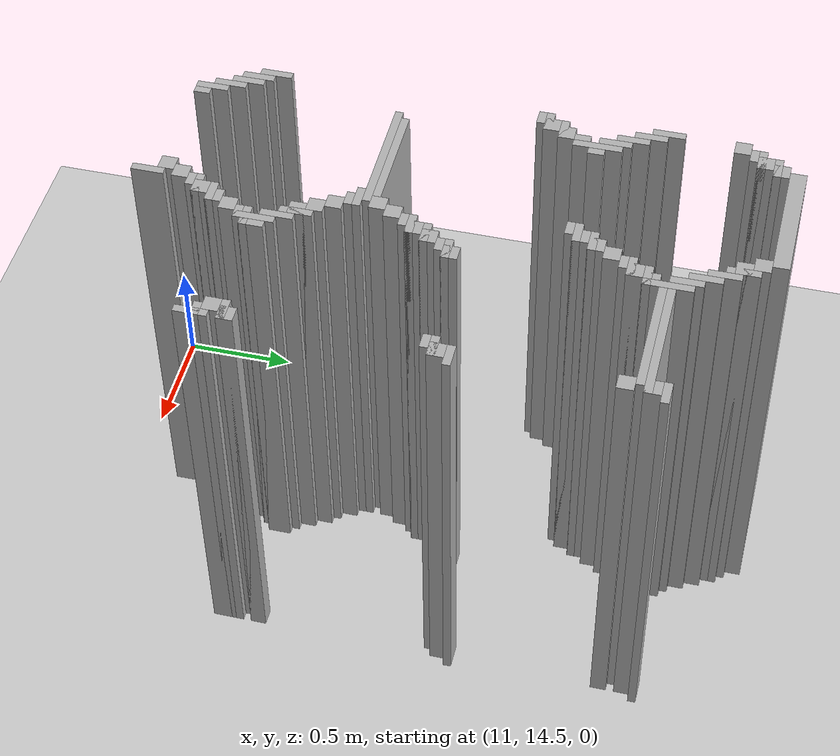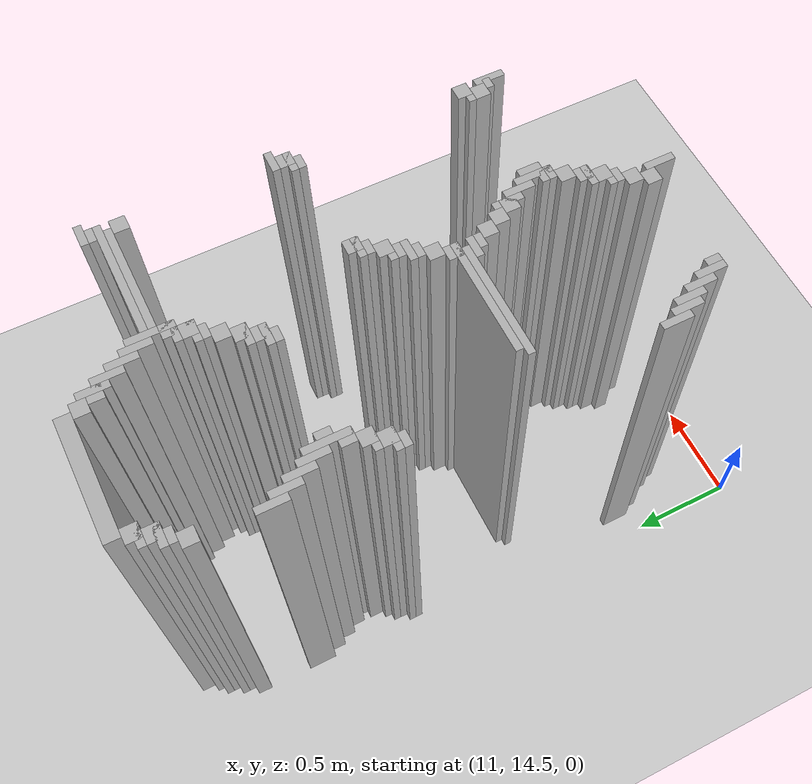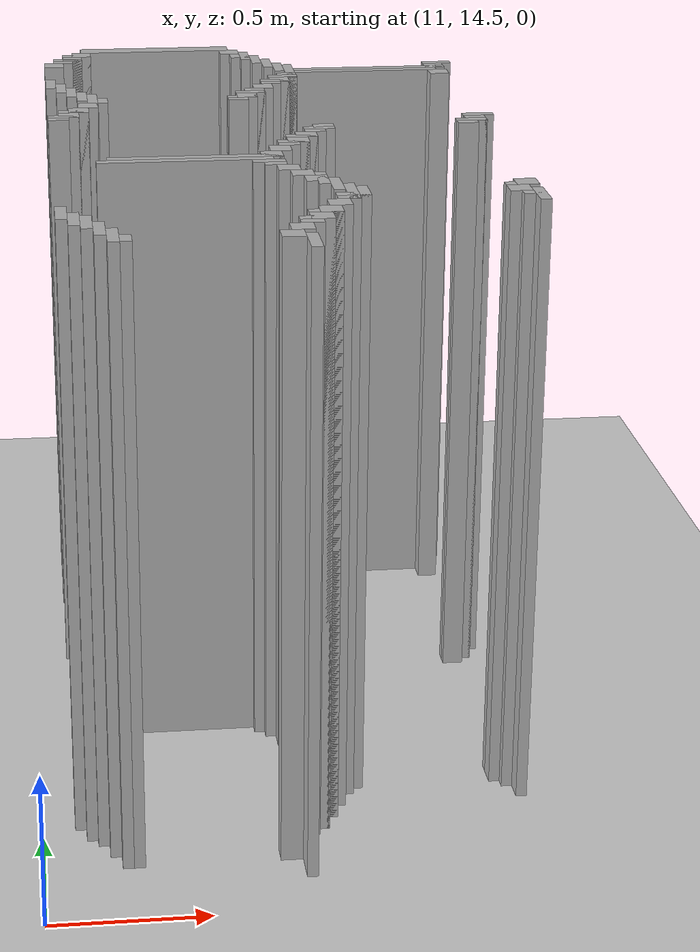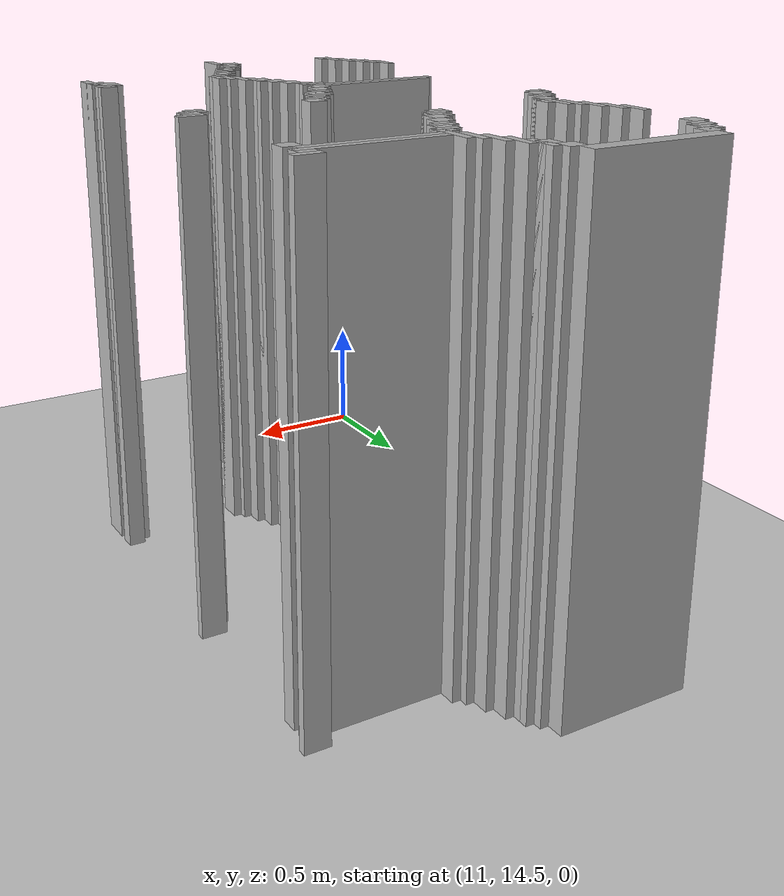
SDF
<sdf version="1.6">
 <world name="slam_world">
  <model name="ground_plane">
   <static>true</static>
   <link name="link">
    <collision name="collision">
     <geometry><plane><normal>0 0 1</normal><size>100 100</size></plane></geometry>
    </collision>
    <visual name="visual">
     <geometry><plane><normal>0 0 1</normal><size>100 100</size></plane></geometry>
     <material>
      <ambient>0.8 0.8 0.8 1</ambient>
      <diffuse>0.8 0.8 0.8 1</diffuse>
      <specular>0.8 0.8 0.8 1</specular>
     </material>
    </visual>
   </link>
  </model>
  <model name="wall_8">
   <static>true</static>
   <pose>11.519721577726218 17.366589327146173 1.0 0 0 0</pose>
   <link name="link">
    <collision name="collision">
     <geometry><box><size>0.5568445475638051 0.06960556844547564 2.0</size></box></geometry>
    </collision>
    <visual name="visual">
     <geometry><box><size>0.5568445475638051 0.06960556844547564 2.0</size></box></geometry>
     <material><ambient>0.5 0.5 0.5 1</ambient><diffuse>0.7 0.7 0.7 1</diffuse></material>
    </visual>
   </link>
  </model>
  <model name="wall_25">
   <static>true</static>
   <pose>11.241299303944315 17.296983758700694 1.0 0 0 0</pose>
   <link name="link">
    <collision name="collision">
     <geometry><box><size>0.06960556844547564 0.06960556844547564 2.0</size></box></geometry>
    </collision>
    <visual name="visual">
     <geometry><box><size>0.06960556844547564 0.06960556844547564 2.0</size></box></geometry>
     <material><ambient>0.5 0.5 0.5 1</ambient><diffuse>0.7 0.7 0.7 1</diffuse></material>
    </visual>
   </link>
  </model>
  <model name="wall_26">
   <static>true</static>
   <pose>11.79814385150812 17.296983758700694 1.0 0 0 0</pose>
   <link name="link">
    <collision name="collision">
     <geometry><box><size>0.06960556844547564 0.06960556844547564 2.0</size></box></geometry>
    </collision>
    <visual name="visual">
     <geometry><box><size>0.06960556844547564 0.06960556844547564 2.0</size></box></geometry>
     <material><ambient>0.5 0.5 0.5 1</ambient><diffuse>0.7 0.7 0.7 1</diffuse></material>
    </visual>
   </link>
  </model>
  <model name="wall_45">
   <static>true</static>
   <pose>11.223897911832946 17.279582366589327 1.0 0 0 0</pose>
   <link name="link">
    <collision name="collision">
     <geometry><box><size>0.10440835266821345 0.03480278422273782 2.0</size></box></geometry>
    </collision>
    <visual name="visual">
     <geometry><box><size>0.10440835266821345 0.03480278422273782 2.0</size></box></geometry>
     <material><ambient>0.5 0.5 0.5 1</ambient><diffuse>0.7 0.7 0.7 1</diffuse></material>
    </visual>
   </link>
  </model>
  <model name="wall_46">
   <static>true</static>
   <pose>11.850348027842227 17.22737819025522 1.0 0 0 0</pose>
   <link name="link">
    <collision name="collision">
     <geometry><box><size>0.03480278422273782 0.13921113689095127 2.0</size></box></geometry>
    </collision>
    <visual name="visual">
     <geometry><box><size>0.03480278422273782 0.13921113689095127 2.0</size></box></geometry>
     <material><ambient>0.5 0.5 0.5 1</ambient><diffuse>0.7 0.7 0.7 1</diffuse></material>
    </visual>
   </link>
  </model>
  <model name="wall_65">
   <static>true</static>
   <pose>11.206496519721577 17.22737819025522 1.0 0 0 0</pose>
   <link name="link">
    <collision name="collision">
     <geometry><box><size>0.06960556844547564 0.06960556844547564 2.0</size></box></geometry>
    </collision>
    <visual name="visual">
     <geometry><box><size>0.06960556844547564 0.06960556844547564 2.0</size></box></geometry>
     <material><ambient>0.5 0.5 0.5 1</ambient><diffuse>0.7 0.7 0.7 1</diffuse></material>
    </visual>
   </link>
  </model>
  <model name="wall_66">
   <static>true</static>
   <pose>11.832946635730858 17.22737819025522 1.0 0 0 0</pose>
   <link name="link">
    <collision name="collision">
     <geometry><box><size>0.06960556844547564 0.06960556844547564 2.0</size></box></geometry>
    </collision>
    <visual name="visual">
     <geometry><box><size>0.06960556844547564 0.06960556844547564 2.0</size></box></geometry>
     <material><ambient>0.5 0.5 0.5 1</ambient><diffuse>0.7 0.7 0.7 1</diffuse></material>
    </visual>
   </link>
  </model>
  <model name="wall_85">
   <static>true</static>
   <pose>11.189095127610209 17.209976798143853 1.0 0 0 0</pose>
   <link name="link">
    <collision name="collision">
     <geometry><box><size>0.10440835266821345 0.03480278422273782 2.0</size></box></geometry>
    </collision>
    <visual name="visual">
     <geometry><box><size>0.10440835266821345 0.03480278422273782 2.0</size></box></geometry>
     <material><ambient>0.5 0.5 0.5 1</ambient><diffuse>0.7 0.7 0.7 1</diffuse></material>
    </visual>
   </link>
  </model>
  <model name="wall_86">
   <static>true</static>
   <pose>11.885150812064964 17.157772621809745 1.0 0 0 0</pose>
   <link name="link">
    <collision name="collision">
     <geometry><box><size>0.03480278422273782 0.13921113689095127 2.0</size></box></geometry>
    </collision>
    <visual name="visual">
     <geometry><box><size>0.03480278422273782 0.13921113689095127 2.0</size></box></geometry>
     <material><ambient>0.5 0.5 0.5 1</ambient><diffuse>0.7 0.7 0.7 1</diffuse></material>
    </visual>
   </link>
  </model>
  <model name="wall_98">
   <static>true</static>
   <pose>11.17169373549884 17.17517401392111 1.0 0 0 0</pose>
   <link name="link">
    <collision name="collision">
     <geometry><box><size>0.06960556844547564 0.03480278422273782 2.0</size></box></geometry>
    </collision>
    <visual name="visual">
     <geometry><box><size>0.06960556844547564 0.03480278422273782 2.0</size></box></geometry>
     <material><ambient>0.5 0.5 0.5 1</ambient><diffuse>0.7 0.7 0.7 1</diffuse></material>
    </visual>
   </link>
  </model>
  <model name="wall_115">
   <static>true</static>
   <pose>11.1368909512761 17.122969837587007 1.0 0 0 0</pose>
   <link name="link">
    <collision name="collision">
     <geometry><box><size>0.06960556844547564 0.06960556844547564 2.0</size></box></geometry>
    </collision>
    <visual name="visual">
     <geometry><box><size>0.06960556844547564 0.06960556844547564 2.0</size></box></geometry>
     <material><ambient>0.5 0.5 0.5 1</ambient><diffuse>0.7 0.7 0.7 1</diffuse></material>
    </visual>
   </link>
  </model>
  <model name="wall_116">
   <static>true</static>
   <pose>11.919953596287703 17.08816705336427 1.0 0 0 0</pose>
   <link name="link">
    <collision name="collision">
     <geometry><box><size>0.03480278422273782 0.13921113689095127 2.0</size></box></geometry>
    </collision>
    <visual name="visual">
     <geometry><box><size>0.03480278422273782 0.13921113689095127 2.0</size></box></geometry>
     <material><ambient>0.5 0.5 0.5 1</ambient><diffuse>0.7 0.7 0.7 1</diffuse></material>
    </visual>
   </link>
  </model>
  <model name="wall_136">
   <static>true</static>
   <pose>11.95475638051044 17.01856148491879 1.0 0 0 0</pose>
   <link name="link">
    <collision name="collision">
     <geometry><box><size>0.03480278422273782 0.13921113689095127 2.0</size></box></geometry>
    </collision>
    <visual name="visual">
     <geometry><box><size>0.03480278422273782 0.13921113689095127 2.0</size></box></geometry>
     <material><ambient>0.5 0.5 0.5 1</ambient><diffuse>0.7 0.7 0.7 1</diffuse></material>
    </visual>
   </link>
  </model>
  <model name="wall_156">
   <static>true</static>
   <pose>11.989559164733178 16.948955916473317 1.0 0 0 0</pose>
   <link name="link">
    <collision name="collision">
     <geometry><box><size>0.03480278422273782 0.2088167053364269 2.0</size></box></geometry>
    </collision>
    <visual name="visual">
     <geometry><box><size>0.03480278422273782 0.2088167053364269 2.0</size></box></geometry>
     <material><ambient>0.5 0.5 0.5 1</ambient><diffuse>0.7 0.7 0.7 1</diffuse></material>
    </visual>
   </link>
  </model>
  <model name="wall_157">
   <static>true</static>
   <pose>12.546403712296984 17.035962877030162 1.0 0 0 0</pose>
   <link name="link">
    <collision name="collision">
     <geometry><box><size>0.10440835266821345 0.03480278422273782 2.0</size></box></geometry>
    </collision>
    <visual name="visual">
     <geometry><box><size>0.10440835266821345 0.03480278422273782 2.0</size></box></geometry>
     <material><ambient>0.5 0.5 0.5 1</ambient><diffuse>0.7 0.7 0.7 1</diffuse></material>
    </visual>
   </link>
  </model>
  <model name="wall_169">
   <static>true</static>
   <pose>12.529002320185615 16.983758700696054 1.0 0 0 0</pose>
   <link name="link">
    <collision name="collision">
     <geometry><box><size>0.06960556844547564 0.06960556844547564 2.0</size></box></geometry>
    </collision>
    <visual name="visual">
     <geometry><box><size>0.06960556844547564 0.06960556844547564 2.0</size></box></geometry>
     <material><ambient>0.5 0.5 0.5 1</ambient><diffuse>0.7 0.7 0.7 1</diffuse></material>
    </visual>
   </link>
  </model>
  <model name="wall_179">
   <static>true</static>
   <pose>12.28538283062645 16.966357308584687 1.0 0 0 0</pose>
   <link name="link">
    <collision name="collision">
     <geometry><box><size>0.5568445475638051 0.03480278422273782 2.0</size></box></geometry>
    </collision>
    <visual name="visual">
     <geometry><box><size>0.5568445475638051 0.03480278422273782 2.0</size></box></geometry>
     <material><ambient>0.5 0.5 0.5 1</ambient><diffuse>0.7 0.7 0.7 1</diffuse></material>
    </visual>
   </link>
  </model>
  <model name="wall_190">
   <static>true</static>
   <pose>12.267981438515081 16.93155452436195 1.0 0 0 0</pose>
   <link name="link">
    <collision name="collision">
     <geometry><box><size>0.5220417633410672 0.03480278422273782 2.0</size></box></geometry>
    </collision>
    <visual name="visual">
     <geometry><box><size>0.5220417633410672 0.03480278422273782 2.0</size></box></geometry>
     <material><ambient>0.5 0.5 0.5 1</ambient><diffuse>0.7 0.7 0.7 1</diffuse></material>
    </visual>
   </link>
  </model>
  <model name="wall_197">
   <static>true</static>
   <pose>11.97215777262181 16.87935034802784 1.0 0 0 0</pose>
   <link name="link">
    <collision name="collision">
     <geometry><box><size>0.06960556844547564 0.06960556844547564 2.0</size></box></geometry>
    </collision>
    <visual name="visual">
     <geometry><box><size>0.06960556844547564 0.06960556844547564 2.0</size></box></geometry>
     <material><ambient>0.5 0.5 0.5 1</ambient><diffuse>0.7 0.7 0.7 1</diffuse></material>
    </visual>
   </link>
  </model>
  <model name="wall_198">
   <static>true</static>
   <pose>12.529002320185615 16.87935034802784 1.0 0 0 0</pose>
   <link name="link">
    <collision name="collision">
     <geometry><box><size>0.06960556844547564 0.06960556844547564 2.0</size></box></geometry>
    </collision>
    <visual name="visual">
     <geometry><box><size>0.06960556844547564 0.06960556844547564 2.0</size></box></geometry>
     <material><ambient>0.5 0.5 0.5 1</ambient><diffuse>0.7 0.7 0.7 1</diffuse></material>
    </visual>
   </link>
  </model>
  <model name="wall_204">
   <static>true</static>
   <pose>11.119489559164732 16.809744779582367 1.0 0 0 0</pose>
   <link name="link">
    <collision name="collision">
     <geometry><box><size>0.03480278422273782 0.13921113689095127 2.0</size></box></geometry>
    </collision>
    <visual name="visual">
     <geometry><box><size>0.03480278422273782 0.13921113689095127 2.0</size></box></geometry>
     <material><ambient>0.5 0.5 0.5 1</ambient><diffuse>0.7 0.7 0.7 1</diffuse></material>
    </visual>
   </link>
  </model>
  <model name="wall_205">
   <static>true</static>
   <pose>11.95475638051044 16.86194895591647 1.0 0 0 0</pose>
   <link name="link">
    <collision name="collision">
     <geometry><box><size>0.10440835266821345 0.03480278422273782 2.0</size></box></geometry>
    </collision>
    <visual name="visual">
     <geometry><box><size>0.10440835266821345 0.03480278422273782 2.0</size></box></geometry>
     <material><ambient>0.5 0.5 0.5 1</ambient><diffuse>0.7 0.7 0.7 1</diffuse></material>
    </visual>
   </link>
  </model>
  <model name="wall_213">
   <static>true</static>
   <pose>11.937354988399072 16.809744779582367 1.0 0 0 0</pose>
   <link name="link">
    <collision name="collision">
     <geometry><box><size>0.06960556844547564 0.06960556844547564 2.0</size></box></geometry>
    </collision>
    <visual name="visual">
     <geometry><box><size>0.06960556844547564 0.06960556844547564 2.0</size></box></geometry>
     <material><ambient>0.5 0.5 0.5 1</ambient><diffuse>0.7 0.7 0.7 1</diffuse></material>
    </visual>
   </link>
  </model>
  <model name="wall_220">
   <static>true</static>
   <pose>11.154292343387471 16.74013921113689 1.0 0 0 0</pose>
   <link name="link">
    <collision name="collision">
     <geometry><box><size>0.03480278422273782 0.13921113689095127 2.0</size></box></geometry>
    </collision>
    <visual name="visual">
     <geometry><box><size>0.03480278422273782 0.13921113689095127 2.0</size></box></geometry>
     <material><ambient>0.5 0.5 0.5 1</ambient><diffuse>0.7 0.7 0.7 1</diffuse></material>
    </visual>
   </link>
  </model>
  <model name="wall_221">
   <static>true</static>
   <pose>11.919953596287703 16.792343387470996 1.0 0 0 0</pose>
   <link name="link">
    <collision name="collision">
     <geometry><box><size>0.10440835266821345 0.03480278422273782 2.0</size></box></geometry>
    </collision>
    <visual name="visual">
     <geometry><box><size>0.10440835266821345 0.03480278422273782 2.0</size></box></geometry>
     <material><ambient>0.5 0.5 0.5 1</ambient><diffuse>0.7 0.7 0.7 1</diffuse></material>
    </visual>
   </link>
  </model>
  <model name="wall_226">
   <static>true</static>
   <pose>11.902552204176333 16.75754060324826 1.0 0 0 0</pose>
   <link name="link">
    <collision name="collision">
     <geometry><box><size>0.06960556844547564 0.03480278422273782 2.0</size></box></geometry>
    </collision>
    <visual name="visual">
     <geometry><box><size>0.06960556844547564 0.03480278422273782 2.0</size></box></geometry>
     <material><ambient>0.5 0.5 0.5 1</ambient><diffuse>0.7 0.7 0.7 1</diffuse></material>
    </visual>
   </link>
  </model>
  <model name="wall_232">
   <static>true</static>
   <pose>11.189095127610209 16.670533642691414 1.0 0 0 0</pose>
   <link name="link">
    <collision name="collision">
     <geometry><box><size>0.03480278422273782 0.13921113689095127 2.0</size></box></geometry>
    </collision>
    <visual name="visual">
     <geometry><box><size>0.03480278422273782 0.13921113689095127 2.0</size></box></geometry>
     <material><ambient>0.5 0.5 0.5 1</ambient><diffuse>0.7 0.7 0.7 1</diffuse></material>
    </visual>
   </link>
  </model>
  <model name="wall_233">
   <static>true</static>
   <pose>11.867749419953595 16.70533642691415 1.0 0 0 0</pose>
   <link name="link">
    <collision name="collision">
     <geometry><box><size>0.06960556844547564 0.06960556844547564 2.0</size></box></geometry>
    </collision>
    <visual name="visual">
     <geometry><box><size>0.06960556844547564 0.06960556844547564 2.0</size></box></geometry>
     <material><ambient>0.5 0.5 0.5 1</ambient><diffuse>0.7 0.7 0.7 1</diffuse></material>
    </visual>
   </link>
  </model>
  <model name="wall_240">
   <static>true</static>
   <pose>11.223897911832946 16.60092807424594 1.0 0 0 0</pose>
   <link name="link">
    <collision name="collision">
     <geometry><box><size>0.03480278422273782 0.13921113689095127 2.0</size></box></geometry>
    </collision>
    <visual name="visual">
     <geometry><box><size>0.03480278422273782 0.13921113689095127 2.0</size></box></geometry>
     <material><ambient>0.5 0.5 0.5 1</ambient><diffuse>0.7 0.7 0.7 1</diffuse></material>
    </visual>
   </link>
  </model>
  <model name="wall_241">
   <static>true</static>
   <pose>11.832946635730858 16.635730858468676 1.0 0 0 0</pose>
   <link name="link">
    <collision name="collision">
     <geometry><box><size>0.06960556844547564 0.06960556844547564 2.0</size></box></geometry>
    </collision>
    <visual name="visual">
     <geometry><box><size>0.06960556844547564 0.06960556844547564 2.0</size></box></geometry>
     <material><ambient>0.5 0.5 0.5 1</ambient><diffuse>0.7 0.7 0.7 1</diffuse></material>
    </visual>
   </link>
  </model>
  <model name="wall_248">
   <static>true</static>
   <pose>11.258700696055683 16.531322505800464 1.0 0 0 0</pose>
   <link name="link">
    <collision name="collision">
     <geometry><box><size>0.03480278422273782 0.2088167053364269 2.0</size></box></geometry>
    </collision>
    <visual name="visual">
     <geometry><box><size>0.03480278422273782 0.2088167053364269 2.0</size></box></geometry>
     <material><ambient>0.5 0.5 0.5 1</ambient><diffuse>0.7 0.7 0.7 1</diffuse></material>
    </visual>
   </link>
  </model>
  <model name="wall_249">
   <static>true</static>
   <pose>11.81554524361949 16.61832946635731 1.0 0 0 0</pose>
   <link name="link">
    <collision name="collision">
     <geometry><box><size>0.10440835266821345 0.03480278422273782 2.0</size></box></geometry>
    </collision>
    <visual name="visual">
     <geometry><box><size>0.10440835266821345 0.03480278422273782 2.0</size></box></geometry>
     <material><ambient>0.5 0.5 0.5 1</ambient><diffuse>0.7 0.7 0.7 1</diffuse></material>
    </visual>
   </link>
  </model>
  <model name="wall_254">
   <static>true</static>
   <pose>11.79814385150812 16.5661252900232 1.0 0 0 0</pose>
   <link name="link">
    <collision name="collision">
     <geometry><box><size>0.06960556844547564 0.06960556844547564 2.0</size></box></geometry>
    </collision>
    <visual name="visual">
     <geometry><box><size>0.06960556844547564 0.06960556844547564 2.0</size></box></geometry>
     <material><ambient>0.5 0.5 0.5 1</ambient><diffuse>0.7 0.7 0.7 1</diffuse></material>
    </visual>
   </link>
  </model>
  <model name="wall_268">
   <static>true</static>
   <pose>11.293503480278423 16.531322505800464 1.0 0 0 0</pose>
   <link name="link">
    <collision name="collision">
     <geometry><box><size>0.03480278422273782 0.06960556844547564 2.0</size></box></geometry>
    </collision>
    <visual name="visual">
     <geometry><box><size>0.03480278422273782 0.06960556844547564 2.0</size></box></geometry>
     <material><ambient>0.5 0.5 0.5 1</ambient><diffuse>0.7 0.7 0.7 1</diffuse></material>
    </visual>
   </link>
  </model>
  <model name="wall_269">
   <static>true</static>
   <pose>11.780742459396752 16.54872389791183 1.0 0 0 0</pose>
   <link name="link">
    <collision name="collision">
     <geometry><box><size>0.10440835266821345 0.03480278422273782 2.0</size></box></geometry>
    </collision>
    <visual name="visual">
     <geometry><box><size>0.10440835266821345 0.03480278422273782 2.0</size></box></geometry>
     <material><ambient>0.5 0.5 0.5 1</ambient><diffuse>0.7 0.7 0.7 1</diffuse></material>
    </visual>
   </link>
  </model>
  <model name="wall_275">
   <static>true</static>
   <pose>11.763341067285383 16.513921113689094 1.0 0 0 0</pose>
   <link name="link">
    <collision name="collision">
     <geometry><box><size>0.06960556844547564 0.03480278422273782 2.0</size></box></geometry>
    </collision>
    <visual name="visual">
     <geometry><box><size>0.06960556844547564 0.03480278422273782 2.0</size></box></geometry>
     <material><ambient>0.5 0.5 0.5 1</ambient><diffuse>0.7 0.7 0.7 1</diffuse></material>
    </visual>
   </link>
  </model>
  <model name="wall_289">
   <static>true</static>
   <pose>11.241299303944315 16.46171693735499 1.0 0 0 0</pose>
   <link name="link">
    <collision name="collision">
     <geometry><box><size>0.06960556844547564 0.06960556844547564 2.0</size></box></geometry>
    </collision>
    <visual name="visual">
     <geometry><box><size>0.06960556844547564 0.06960556844547564 2.0</size></box></geometry>
     <material><ambient>0.5 0.5 0.5 1</ambient><diffuse>0.7 0.7 0.7 1</diffuse></material>
    </visual>
   </link>
  </model>
  <model name="wall_312">
   <static>true</static>
   <pose>11.206496519721577 16.39211136890951 1.0 0 0 0</pose>
   <link name="link">
    <collision name="collision">
     <geometry><box><size>0.06960556844547564 0.06960556844547564 2.0</size></box></geometry>
    </collision>
    <visual name="visual">
     <geometry><box><size>0.06960556844547564 0.06960556844547564 2.0</size></box></geometry>
     <material><ambient>0.5 0.5 0.5 1</ambient><diffuse>0.7 0.7 0.7 1</diffuse></material>
    </visual>
   </link>
  </model>
  <model name="wall_329">
   <static>true</static>
   <pose>11.189095127610209 16.374709976798144 1.0 0 0 0</pose>
   <link name="link">
    <collision name="collision">
     <geometry><box><size>0.10440835266821345 0.03480278422273782 2.0</size></box></geometry>
    </collision>
    <visual name="visual">
     <geometry><box><size>0.10440835266821345 0.03480278422273782 2.0</size></box></geometry>
     <material><ambient>0.5 0.5 0.5 1</ambient><diffuse>0.7 0.7 0.7 1</diffuse></material>
    </visual>
   </link>
  </model>
  <model name="wall_346">
   <static>true</static>
   <pose>11.17169373549884 16.322505800464036 1.0 0 0 0</pose>
   <link name="link">
    <collision name="collision">
     <geometry><box><size>0.06960556844547564 0.06960556844547564 2.0</size></box></geometry>
    </collision>
    <visual name="visual">
     <geometry><box><size>0.06960556844547564 0.06960556844547564 2.0</size></box></geometry>
     <material><ambient>0.5 0.5 0.5 1</ambient><diffuse>0.7 0.7 0.7 1</diffuse></material>
    </visual>
   </link>
  </model>
  <model name="wall_363">
   <static>true</static>
   <pose>11.154292343387471 16.30510440835267 1.0 0 0 0</pose>
   <link name="link">
    <collision name="collision">
     <geometry><box><size>0.10440835266821345 0.03480278422273782 2.0</size></box></geometry>
    </collision>
    <visual name="visual">
     <geometry><box><size>0.10440835266821345 0.03480278422273782 2.0</size></box></geometry>
     <material><ambient>0.5 0.5 0.5 1</ambient><diffuse>0.7 0.7 0.7 1</diffuse></material>
    </visual>
   </link>
  </model>
  <model name="wall_373">
   <static>true</static>
   <pose>11.1368909512761 16.270301624129928 1.0 0 0 0</pose>
   <link name="link">
    <collision name="collision">
     <geometry><box><size>0.06960556844547564 0.03480278422273782 2.0</size></box></geometry>
    </collision>
    <visual name="visual">
     <geometry><box><size>0.06960556844547564 0.03480278422273782 2.0</size></box></geometry>
     <material><ambient>0.5 0.5 0.5 1</ambient><diffuse>0.7 0.7 0.7 1</diffuse></material>
    </visual>
   </link>
  </model>
  <model name="wall_399">
   <static>true</static>
   <pose>12.546403712296984 16.200696055684453 1.0 0 0 0</pose>
   <link name="link">
    <collision name="collision">
     <geometry><box><size>0.10440835266821345 0.03480278422273782 2.0</size></box></geometry>
    </collision>
    <visual name="visual">
     <geometry><box><size>0.10440835266821345 0.03480278422273782 2.0</size></box></geometry>
     <material><ambient>0.5 0.5 0.5 1</ambient><diffuse>0.7 0.7 0.7 1</diffuse></material>
    </visual>
   </link>
  </model>
  <model name="wall_414">
   <static>true</static>
   <pose>12.529002320185615 16.14849187935035 1.0 0 0 0</pose>
   <link name="link">
    <collision name="collision">
     <geometry><box><size>0.06960556844547564 0.06960556844547564 2.0</size></box></geometry>
    </collision>
    <visual name="visual">
     <geometry><box><size>0.06960556844547564 0.06960556844547564 2.0</size></box></geometry>
     <material><ambient>0.5 0.5 0.5 1</ambient><diffuse>0.7 0.7 0.7 1</diffuse></material>
    </visual>
   </link>
  </model>
  <model name="wall_428">
   <static>true</static>
   <pose>12.511600928074245 16.13109048723898 1.0 0 0 0</pose>
   <link name="link">
    <collision name="collision">
     <geometry><box><size>0.10440835266821345 0.03480278422273782 2.0</size></box></geometry>
    </collision>
    <visual name="visual">
     <geometry><box><size>0.10440835266821345 0.03480278422273782 2.0</size></box></geometry>
     <material><ambient>0.5 0.5 0.5 1</ambient><diffuse>0.7 0.7 0.7 1</diffuse></material>
    </visual>
   </link>
  </model>
  <model name="wall_439">
   <static>true</static>
   <pose>12.006960556844547 16.07888631090487 1.0 0 0 0</pose>
   <link name="link">
    <collision name="collision">
     <geometry><box><size>0.06960556844547564 0.06960556844547564 2.0</size></box></geometry>
    </collision>
    <visual name="visual">
     <geometry><box><size>0.06960556844547564 0.06960556844547564 2.0</size></box></geometry>
     <material><ambient>0.5 0.5 0.5 1</ambient><diffuse>0.7 0.7 0.7 1</diffuse></material>
    </visual>
   </link>
  </model>
  <model name="wall_440">
   <static>true</static>
   <pose>12.494199535962876 16.09628770301624 1.0 0 0 0</pose>
   <link name="link">
    <collision name="collision">
     <geometry><box><size>0.06960556844547564 0.03480278422273782 2.0</size></box></geometry>
    </collision>
    <visual name="visual">
     <geometry><box><size>0.06960556844547564 0.03480278422273782 2.0</size></box></geometry>
     <material><ambient>0.5 0.5 0.5 1</ambient><diffuse>0.7 0.7 0.7 1</diffuse></material>
    </visual>
   </link>
  </model>
  <model name="wall_452">
   <static>true</static>
   <pose>11.989559164733178 16.061484918793504 1.0 0 0 0</pose>
   <link name="link">
    <collision name="collision">
     <geometry><box><size>0.10440835266821345 0.03480278422273782 2.0</size></box></geometry>
    </collision>
    <visual name="visual">
     <geometry><box><size>0.10440835266821345 0.03480278422273782 2.0</size></box></geometry>
     <material><ambient>0.5 0.5 0.5 1</ambient><diffuse>0.7 0.7 0.7 1</diffuse></material>
    </visual>
   </link>
  </model>
  <model name="wall_465">
   <static>true</static>
   <pose>11.97215777262181 16.026682134570766 1.0 0 0 0</pose>
   <link name="link">
    <collision name="collision">
     <geometry><box><size>0.06960556844547564 0.03480278422273782 2.0</size></box></geometry>
    </collision>
    <visual name="visual">
     <geometry><box><size>0.06960556844547564 0.03480278422273782 2.0</size></box></geometry>
     <material><ambient>0.5 0.5 0.5 1</ambient><diffuse>0.7 0.7 0.7 1</diffuse></material>
    </visual>
   </link>
  </model>
  <model name="wall_478">
   <static>true</static>
   <pose>11.937354988399072 15.974477958236658 1.0 0 0 0</pose>
   <link name="link">
    <collision name="collision">
     <geometry><box><size>0.06960556844547564 0.06960556844547564 2.0</size></box></geometry>
    </collision>
    <visual name="visual">
     <geometry><box><size>0.06960556844547564 0.06960556844547564 2.0</size></box></geometry>
     <material><ambient>0.5 0.5 0.5 1</ambient><diffuse>0.7 0.7 0.7 1</diffuse></material>
    </visual>
   </link>
  </model>
  <model name="wall_491">
   <static>true</static>
   <pose>11.919953596287703 15.95707656612529 1.0 0 0 0</pose>
   <link name="link">
    <collision name="collision">
     <geometry><box><size>0.10440835266821345 0.03480278422273782 2.0</size></box></geometry>
    </collision>
    <visual name="visual">
     <geometry><box><size>0.10440835266821345 0.03480278422273782 2.0</size></box></geometry>
     <material><ambient>0.5 0.5 0.5 1</ambient><diffuse>0.7 0.7 0.7 1</diffuse></material>
    </visual>
   </link>
  </model>
  <model name="wall_500">
   <static>true</static>
   <pose>11.902552204176333 15.904872389791183 1.0 0 0 0</pose>
   <link name="link">
    <collision name="collision">
     <geometry><box><size>0.06960556844547564 0.06960556844547564 2.0</size></box></geometry>
    </collision>
    <visual name="visual">
     <geometry><box><size>0.06960556844547564 0.06960556844547564 2.0</size></box></geometry>
     <material><ambient>0.5 0.5 0.5 1</ambient><diffuse>0.7 0.7 0.7 1</diffuse></material>
    </visual>
   </link>
  </model>
  <model name="wall_513">
   <static>true</static>
   <pose>11.885150812064964 15.887470997679813 1.0 0 0 0</pose>
   <link name="link">
    <collision name="collision">
     <geometry><box><size>0.10440835266821345 0.03480278422273782 2.0</size></box></geometry>
    </collision>
    <visual name="visual">
     <geometry><box><size>0.10440835266821345 0.03480278422273782 2.0</size></box></geometry>
     <material><ambient>0.5 0.5 0.5 1</ambient><diffuse>0.7 0.7 0.7 1</diffuse></material>
    </visual>
   </link>
  </model>
  <model name="wall_521">
   <static>true</static>
   <pose>11.867749419953595 15.852668213457076 1.0 0 0 0</pose>
   <link name="link">
    <collision name="collision">
     <geometry><box><size>0.06960556844547564 0.03480278422273782 2.0</size></box></geometry>
    </collision>
    <visual name="visual">
     <geometry><box><size>0.06960556844547564 0.03480278422273782 2.0</size></box></geometry>
     <material><ambient>0.5 0.5 0.5 1</ambient><diffuse>0.7 0.7 0.7 1</diffuse></material>
    </visual>
   </link>
  </model>
  <model name="wall_533">
   <static>true</static>
   <pose>11.832946635730858 15.80046403712297 1.0 0 0 0</pose>
   <link name="link">
    <collision name="collision">
     <geometry><box><size>0.06960556844547564 0.06960556844547564 2.0</size></box></geometry>
    </collision>
    <visual name="visual">
     <geometry><box><size>0.06960556844547564 0.06960556844547564 2.0</size></box></geometry>
     <material><ambient>0.5 0.5 0.5 1</ambient><diffuse>0.7 0.7 0.7 1</diffuse></material>
    </visual>
   </link>
  </model>
  <model name="wall_546">
   <static>true</static>
   <pose>11.79814385150812 15.730858468677493 1.0 0 0 0</pose>
   <link name="link">
    <collision name="collision">
     <geometry><box><size>0.06960556844547564 0.06960556844547564 2.0</size></box></geometry>
    </collision>
    <visual name="visual">
     <geometry><box><size>0.06960556844547564 0.06960556844547564 2.0</size></box></geometry>
     <material><ambient>0.5 0.5 0.5 1</ambient><diffuse>0.7 0.7 0.7 1</diffuse></material>
    </visual>
   </link>
  </model>
  <model name="wall_558">
   <static>true</static>
   <pose>11.554524361948955 15.713457076566124 1.0 0 0 0</pose>
   <link name="link">
    <collision name="collision">
     <geometry><box><size>0.5568445475638051 0.03480278422273782 2.0</size></box></geometry>
    </collision>
    <visual name="visual">
     <geometry><box><size>0.5568445475638051 0.03480278422273782 2.0</size></box></geometry>
     <material><ambient>0.5 0.5 0.5 1</ambient><diffuse>0.7 0.7 0.7 1</diffuse></material>
    </visual>
   </link>
  </model>
  <model name="wall_571">
   <static>true</static>
   <pose>11.519721577726218 15.678654292343387 1.0 0 0 0</pose>
   <link name="link">
    <collision name="collision">
     <geometry><box><size>0.5568445475638051 0.03480278422273782 2.0</size></box></geometry>
    </collision>
    <visual name="visual">
     <geometry><box><size>0.5568445475638051 0.03480278422273782 2.0</size></box></geometry>
     <material><ambient>0.5 0.5 0.5 1</ambient><diffuse>0.7 0.7 0.7 1</diffuse></material>
    </visual>
   </link>
  </model>
  <model name="wall_587">
   <static>true</static>
   <pose>11.780742459396752 15.64385150812065 1.0 0 0 0</pose>
   <link name="link">
    <collision name="collision">
     <geometry><box><size>0.10440835266821345 0.03480278422273782 2.0</size></box></geometry>
    </collision>
    <visual name="visual">
     <geometry><box><size>0.10440835266821345 0.03480278422273782 2.0</size></box></geometry>
     <material><ambient>0.5 0.5 0.5 1</ambient><diffuse>0.7 0.7 0.7 1</diffuse></material>
    </visual>
   </link>
  </model>
  <model name="wall_603">
   <static>true</static>
   <pose>11.79814385150812 15.609048723897912 1.0 0 0 0</pose>
   <link name="link">
    <collision name="collision">
     <geometry><box><size>0.06960556844547564 0.03480278422273782 2.0</size></box></geometry>
    </collision>
    <visual name="visual">
     <geometry><box><size>0.06960556844547564 0.03480278422273782 2.0</size></box></geometry>
     <material><ambient>0.5 0.5 0.5 1</ambient><diffuse>0.7 0.7 0.7 1</diffuse></material>
    </visual>
   </link>
  </model>
  <model name="wall_619">
   <static>true</static>
   <pose>11.832946635730858 15.556844547563804 1.0 0 0 0</pose>
   <link name="link">
    <collision name="collision">
     <geometry><box><size>0.06960556844547564 0.06960556844547564 2.0</size></box></geometry>
    </collision>
    <visual name="visual">
     <geometry><box><size>0.06960556844547564 0.06960556844547564 2.0</size></box></geometry>
     <material><ambient>0.5 0.5 0.5 1</ambient><diffuse>0.7 0.7 0.7 1</diffuse></material>
    </visual>
   </link>
  </model>
  <model name="wall_635">
   <static>true</static>
   <pose>11.867749419953595 15.48723897911833 1.0 0 0 0</pose>
   <link name="link">
    <collision name="collision">
     <geometry><box><size>0.06960556844547564 0.06960556844547564 2.0</size></box></geometry>
    </collision>
    <visual name="visual">
     <geometry><box><size>0.06960556844547564 0.06960556844547564 2.0</size></box></geometry>
     <material><ambient>0.5 0.5 0.5 1</ambient><diffuse>0.7 0.7 0.7 1</diffuse></material>
    </visual>
   </link>
  </model>
  <model name="wall_651">
   <static>true</static>
   <pose>11.919953596287703 15.417633410672853 1.0 0 0 0</pose>
   <link name="link">
    <collision name="collision">
     <geometry><box><size>0.03480278422273782 0.13921113689095127 2.0</size></box></geometry>
    </collision>
    <visual name="visual">
     <geometry><box><size>0.03480278422273782 0.13921113689095127 2.0</size></box></geometry>
     <material><ambient>0.5 0.5 0.5 1</ambient><diffuse>0.7 0.7 0.7 1</diffuse></material>
    </visual>
   </link>
  </model>
  <model name="wall_662">
   <static>true</static>
   <pose>11.902552204176333 15.417633410672853 1.0 0 0 0</pose>
   <link name="link">
    <collision name="collision">
     <geometry><box><size>0.06960556844547564 0.06960556844547564 2.0</size></box></geometry>
    </collision>
    <visual name="visual">
     <geometry><box><size>0.06960556844547564 0.06960556844547564 2.0</size></box></geometry>
     <material><ambient>0.5 0.5 0.5 1</ambient><diffuse>0.7 0.7 0.7 1</diffuse></material>
    </visual>
   </link>
  </model>
  <model name="wall_677">
   <static>true</static>
   <pose>11.95475638051044 15.348027842227378 1.0 0 0 0</pose>
   <link name="link">
    <collision name="collision">
     <geometry><box><size>0.03480278422273782 0.13921113689095127 2.0</size></box></geometry>
    </collision>
    <visual name="visual">
     <geometry><box><size>0.03480278422273782 0.13921113689095127 2.0</size></box></geometry>
     <material><ambient>0.5 0.5 0.5 1</ambient><diffuse>0.7 0.7 0.7 1</diffuse></material>
    </visual>
   </link>
  </model>
  <model name="wall_699">
   <static>true</static>
   <pose>11.989559164733178 15.261020881670532 1.0 0 0 0</pose>
   <link name="link">
    <collision name="collision">
     <geometry><box><size>0.03480278422273782 0.17401392111368907 2.0</size></box></geometry>
    </collision>
    <visual name="visual">
     <geometry><box><size>0.03480278422273782 0.17401392111368907 2.0</size></box></geometry>
     <material><ambient>0.5 0.5 0.5 1</ambient><diffuse>0.7 0.7 0.7 1</diffuse></material>
    </visual>
   </link>
  </model>
  <model name="wall_700">
   <static>true</static>
   <pose>12.529002320185615 15.31322505800464 1.0 0 0 0</pose>
   <link name="link">
    <collision name="collision">
     <geometry><box><size>0.06960556844547564 0.06960556844547564 2.0</size></box></geometry>
    </collision>
    <visual name="visual">
     <geometry><box><size>0.06960556844547564 0.06960556844547564 2.0</size></box></geometry>
     <material><ambient>0.5 0.5 0.5 1</ambient><diffuse>0.7 0.7 0.7 1</diffuse></material>
    </visual>
   </link>
  </model>
  <model name="wall_715">
   <static>true</static>
   <pose>12.024361948955915 15.261020881670532 1.0 0 0 0</pose>
   <link name="link">
    <collision name="collision">
     <geometry><box><size>0.03480278422273782 0.10440835266821345 2.0</size></box></geometry>
    </collision>
    <visual name="visual">
     <geometry><box><size>0.03480278422273782 0.10440835266821345 2.0</size></box></geometry>
     <material><ambient>0.5 0.5 0.5 1</ambient><diffuse>0.7 0.7 0.7 1</diffuse></material>
    </visual>
   </link>
  </model>
  <model name="wall_716">
   <static>true</static>
   <pose>12.511600928074245 15.295823665893272 1.0 0 0 0</pose>
   <link name="link">
    <collision name="collision">
     <geometry><box><size>0.10440835266821345 0.03480278422273782 2.0</size></box></geometry>
    </collision>
    <visual name="visual">
     <geometry><box><size>0.10440835266821345 0.03480278422273782 2.0</size></box></geometry>
     <material><ambient>0.5 0.5 0.5 1</ambient><diffuse>0.7 0.7 0.7 1</diffuse></material>
    </visual>
   </link>
  </model>
  <model name="wall_728">
   <static>true</static>
   <pose>12.494199535962876 15.243619489559164 1.0 0 0 0</pose>
   <link name="link">
    <collision name="collision">
     <geometry><box><size>0.06960556844547564 0.06960556844547564 2.0</size></box></geometry>
    </collision>
    <visual name="visual">
     <geometry><box><size>0.06960556844547564 0.06960556844547564 2.0</size></box></geometry>
     <material><ambient>0.5 0.5 0.5 1</ambient><diffuse>0.7 0.7 0.7 1</diffuse></material>
    </visual>
   </link>
  </model>
  <model name="wall_742">
   <static>true</static>
   <pose>11.989559164733178 15.226218097447795 1.0 0 0 0</pose>
   <link name="link">
    <collision name="collision">
     <geometry><box><size>0.10440835266821345 0.03480278422273782 2.0</size></box></geometry>
    </collision>
    <visual name="visual">
     <geometry><box><size>0.10440835266821345 0.03480278422273782 2.0</size></box></geometry>
     <material><ambient>0.5 0.5 0.5 1</ambient><diffuse>0.7 0.7 0.7 1</diffuse></material>
    </visual>
   </link>
  </model>
  <model name="wall_743">
   <static>true</static>
   <pose>12.546403712296984 15.174013921113689 1.0 0 0 0</pose>
   <link name="link">
    <collision name="collision">
     <geometry><box><size>0.03480278422273782 0.13921113689095127 2.0</size></box></geometry>
    </collision>
    <visual name="visual">
     <geometry><box><size>0.03480278422273782 0.13921113689095127 2.0</size></box></geometry>
     <material><ambient>0.5 0.5 0.5 1</ambient><diffuse>0.7 0.7 0.7 1</diffuse></material>
    </visual>
   </link>
  </model>
  <model name="wall_759">
   <static>true</static>
   <pose>11.97215777262181 15.191415313225058 1.0 0 0 0</pose>
   <link name="link">
    <collision name="collision">
     <geometry><box><size>0.06960556844547564 0.03480278422273782 2.0</size></box></geometry>
    </collision>
    <visual name="visual">
     <geometry><box><size>0.06960556844547564 0.03480278422273782 2.0</size></box></geometry>
     <material><ambient>0.5 0.5 0.5 1</ambient><diffuse>0.7 0.7 0.7 1</diffuse></material>
    </visual>
   </link>
  </model>
  <model name="wall_760">
   <static>true</static>
   <pose>12.529002320185615 15.191415313225058 1.0 0 0 0</pose>
   <link name="link">
    <collision name="collision">
     <geometry><box><size>0.06960556844547564 0.03480278422273782 2.0</size></box></geometry>
    </collision>
    <visual name="visual">
     <geometry><box><size>0.06960556844547564 0.03480278422273782 2.0</size></box></geometry>
     <material><ambient>0.5 0.5 0.5 1</ambient><diffuse>0.7 0.7 0.7 1</diffuse></material>
    </visual>
   </link>
  </model>
  <model name="wall_775">
   <static>true</static>
   <pose>11.119489559164732 15.104408352668212 1.0 0 0 0</pose>
   <link name="link">
    <collision name="collision">
     <geometry><box><size>0.03480278422273782 0.13921113689095127 2.0</size></box></geometry>
    </collision>
    <visual name="visual">
     <geometry><box><size>0.03480278422273782 0.13921113689095127 2.0</size></box></geometry>
     <material><ambient>0.5 0.5 0.5 1</ambient><diffuse>0.7 0.7 0.7 1</diffuse></material>
    </visual>
   </link>
  </model>
  <model name="wall_776">
   <static>true</static>
   <pose>11.937354988399072 15.139211136890951 1.0 0 0 0</pose>
   <link name="link">
    <collision name="collision">
     <geometry><box><size>0.06960556844547564 0.06960556844547564 2.0</size></box></geometry>
    </collision>
    <visual name="visual">
     <geometry><box><size>0.06960556844547564 0.06960556844547564 2.0</size></box></geometry>
     <material><ambient>0.5 0.5 0.5 1</ambient><diffuse>0.7 0.7 0.7 1</diffuse></material>
    </visual>
   </link>
  </model>
  <model name="wall_792">
   <static>true</static>
   <pose>11.154292343387471 15.034802784222737 1.0 0 0 0</pose>
   <link name="link">
    <collision name="collision">
     <geometry><box><size>0.03480278422273782 0.13921113689095127 2.0</size></box></geometry>
    </collision>
    <visual name="visual">
     <geometry><box><size>0.03480278422273782 0.13921113689095127 2.0</size></box></geometry>
     <material><ambient>0.5 0.5 0.5 1</ambient><diffuse>0.7 0.7 0.7 1</diffuse></material>
    </visual>
   </link>
  </model>
  <model name="wall_793">
   <static>true</static>
   <pose>11.902552204176333 15.069605568445475 1.0 0 0 0</pose>
   <link name="link">
    <collision name="collision">
     <geometry><box><size>0.06960556844547564 0.06960556844547564 2.0</size></box></geometry>
    </collision>
    <visual name="visual">
     <geometry><box><size>0.06960556844547564 0.06960556844547564 2.0</size></box></geometry>
     <material><ambient>0.5 0.5 0.5 1</ambient><diffuse>0.7 0.7 0.7 1</diffuse></material>
    </visual>
   </link>
  </model>
  <model name="wall_809">
   <static>true</static>
   <pose>11.189095127610209 15.0 1.0 0 0 0</pose>
   <link name="link">
    <collision name="collision">
     <geometry><box><size>0.03480278422273782 0.13921113689095127 2.0</size></box></geometry>
    </collision>
    <visual name="visual">
     <geometry><box><size>0.03480278422273782 0.13921113689095127 2.0</size></box></geometry>
     <material><ambient>0.5 0.5 0.5 1</ambient><diffuse>0.7 0.7 0.7 1</diffuse></material>
    </visual>
   </link>
  </model>
  <model name="wall_810">
   <static>true</static>
   <pose>11.885150812064964 15.052204176334106 1.0 0 0 0</pose>
   <link name="link">
    <collision name="collision">
     <geometry><box><size>0.10440835266821345 0.03480278422273782 2.0</size></box></geometry>
    </collision>
    <visual name="visual">
     <geometry><box><size>0.10440835266821345 0.03480278422273782 2.0</size></box></geometry>
     <material><ambient>0.5 0.5 0.5 1</ambient><diffuse>0.7 0.7 0.7 1</diffuse></material>
    </visual>
   </link>
  </model>
  <model name="wall_822">
   <static>true</static>
   <pose>11.867749419953595 15.0 1.0 0 0 0</pose>
   <link name="link">
    <collision name="collision">
     <geometry><box><size>0.06960556844547564 0.06960556844547564 2.0</size></box></geometry>
    </collision>
    <visual name="visual">
     <geometry><box><size>0.06960556844547564 0.06960556844547564 2.0</size></box></geometry>
     <material><ambient>0.5 0.5 0.5 1</ambient><diffuse>0.7 0.7 0.7 1</diffuse></material>
    </visual>
   </link>
  </model>
  <model name="wall_836">
   <static>true</static>
   <pose>11.223897911832946 14.930394431554523 1.0 0 0 0</pose>
   <link name="link">
    <collision name="collision">
     <geometry><box><size>0.03480278422273782 0.13921113689095127 2.0</size></box></geometry>
    </collision>
    <visual name="visual">
     <geometry><box><size>0.03480278422273782 0.13921113689095127 2.0</size></box></geometry>
     <material><ambient>0.5 0.5 0.5 1</ambient><diffuse>0.7 0.7 0.7 1</diffuse></material>
    </visual>
   </link>
  </model>
  <model name="wall_837">
   <static>true</static>
   <pose>11.850348027842227 14.982598607888631 1.0 0 0 0</pose>
   <link name="link">
    <collision name="collision">
     <geometry><box><size>0.10440835266821345 0.03480278422273782 2.0</size></box></geometry>
    </collision>
    <visual name="visual">
     <geometry><box><size>0.10440835266821345 0.03480278422273782 2.0</size></box></geometry>
     <material><ambient>0.5 0.5 0.5 1</ambient><diffuse>0.7 0.7 0.7 1</diffuse></material>
    </visual>
   </link>
  </model>
  <model name="wall_848">
   <static>true</static>
   <pose>11.832946635730858 14.947795823665892 1.0 0 0 0</pose>
   <link name="link">
    <collision name="collision">
     <geometry><box><size>0.06960556844547564 0.03480278422273782 2.0</size></box></geometry>
    </collision>
    <visual name="visual">
     <geometry><box><size>0.06960556844547564 0.03480278422273782 2.0</size></box></geometry>
     <material><ambient>0.5 0.5 0.5 1</ambient><diffuse>0.7 0.7 0.7 1</diffuse></material>
    </visual>
   </link>
  </model>
  <model name="wall_862">
   <static>true</static>
   <pose>11.258700696055683 14.860788863109049 1.0 0 0 0</pose>
   <link name="link">
    <collision name="collision">
     <geometry><box><size>0.03480278422273782 0.13921113689095127 2.0</size></box></geometry>
    </collision>
    <visual name="visual">
     <geometry><box><size>0.03480278422273782 0.13921113689095127 2.0</size></box></geometry>
     <material><ambient>0.5 0.5 0.5 1</ambient><diffuse>0.7 0.7 0.7 1</diffuse></material>
    </visual>
   </link>
  </model>
  <model name="wall_863">
   <static>true</static>
   <pose>11.79814385150812 14.895591647331786 1.0 0 0 0</pose>
   <link name="link">
    <collision name="collision">
     <geometry><box><size>0.06960556844547564 0.06960556844547564 2.0</size></box></geometry>
    </collision>
    <visual name="visual">
     <geometry><box><size>0.06960556844547564 0.06960556844547564 2.0</size></box></geometry>
     <material><ambient>0.5 0.5 0.5 1</ambient><diffuse>0.7 0.7 0.7 1</diffuse></material>
    </visual>
   </link>
  </model>
  <model name="wall_884">
   <static>true</static>
   <pose>11.293503480278423 14.825986078886311 1.0 0 0 0</pose>
   <link name="link">
    <collision name="collision">
     <geometry><box><size>0.03480278422273782 0.06960556844547564 2.0</size></box></geometry>
    </collision>
    <visual name="visual">
     <geometry><box><size>0.03480278422273782 0.06960556844547564 2.0</size></box></geometry>
     <material><ambient>0.5 0.5 0.5 1</ambient><diffuse>0.7 0.7 0.7 1</diffuse></material>
    </visual>
   </link>
  </model>
  <model name="wall_885">
   <static>true</static>
   <pose>11.763341067285383 14.825986078886311 1.0 0 0 0</pose>
   <link name="link">
    <collision name="collision">
     <geometry><box><size>0.06960556844547564 0.06960556844547564 2.0</size></box></geometry>
    </collision>
    <visual name="visual">
     <geometry><box><size>0.06960556844547564 0.06960556844547564 2.0</size></box></geometry>
     <material><ambient>0.5 0.5 0.5 1</ambient><diffuse>0.7 0.7 0.7 1</diffuse></material>
    </visual>
   </link>
  </model>
  <model name="wall_899">
   <static>true</static>
   <pose>11.81554524361949 14.756380510440835 1.0 0 0 0</pose>
   <link name="link">
    <collision name="collision">
     <geometry><box><size>0.03480278422273782 0.13921113689095127 2.0</size></box></geometry>
    </collision>
    <visual name="visual">
     <geometry><box><size>0.03480278422273782 0.13921113689095127 2.0</size></box></geometry>
     <material><ambient>0.5 0.5 0.5 1</ambient><diffuse>0.7 0.7 0.7 1</diffuse></material>
    </visual>
   </link>
  </model>
 </world>
</sdf>
